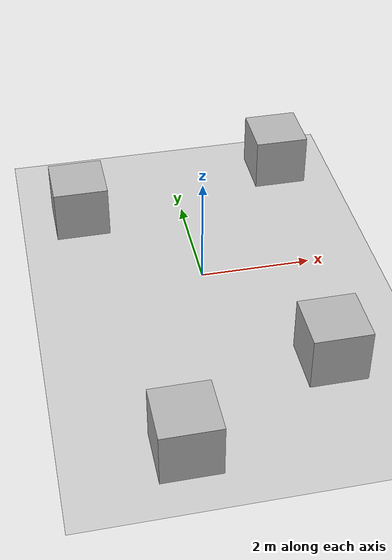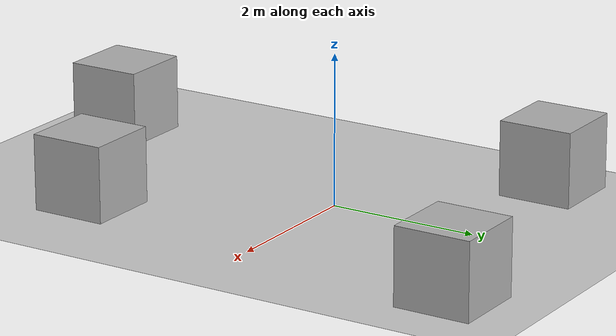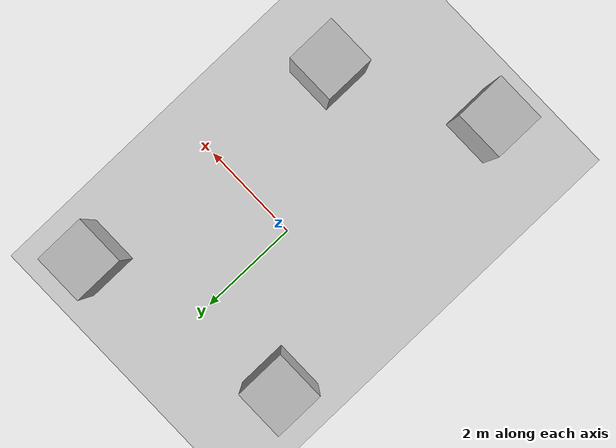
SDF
<?xml version="1.0"?>
<sdf version='1.10'>
  <world name='sirius_world'>
    <physics name='1ms' type='ignored'>
      <max_step_size>0.001</max_step_size>
      <real_time_factor>1</real_time_factor>
      <real_time_update_rate>1000</real_time_update_rate>
    </physics>
    <plugin name='gz::sim::systems::Physics' filename='gz-sim-physics-system'/>
    <plugin name='gz::sim::systems::SceneBroadcaster' filename='gz-sim-scene-broadcaster-system'/>
    <plugin name='gz::sim::systems::UserCommands' filename='gz-sim-user-commands-system'/>
    <plugin name='gz::sim::systems::Sensors' filename='gz-sim-sensors-system'/>
    <gravity>0 0 -9.8000000000000007</gravity>
    <magnetic_field>5.5644999999999998e-06 2.2875799999999999e-05 -4.2388400000000002e-05</magnetic_field>
    <atmosphere type='adiabatic'/>
    <scene>
      <ambient>0.400000006 0.400000006 0.400000006 1</ambient>
      <background>0.699999988 0.699999988 0.699999988 1</background>
      <shadows>true</shadows>
    </scene>
    <model name='ground_plane'>
      <static>true</static>
      <link name='link'>
        <collision name='collision'>
          <geometry>
            <plane>
              <normal>0 0 1</normal>
              <size>1 1</size>
            </plane>
          </geometry>
          <surface>
            <friction>
              <ode/>
            </friction>
            <bounce/>
            <contact/>
          </surface>
        </collision>
        <visual name='visual'>
          <geometry>
            <plane>
              <normal>0 0 1</normal>
              <size>100 100</size>
            </plane>
          </geometry>
          <material>
            <ambient>0.800000012 0.800000012 0.800000012 1</ambient>
            <diffuse>0.800000012 0.800000012 0.800000012 1</diffuse>
            <specular>0.800000012 0.800000012 0.800000012 1</specular>
          </material>
        </visual>
        <pose>0 0 0 0 0 0</pose>
        <inertial>
          <pose>0 0 0 0 0 0</pose>
          <mass>1</mass>
          <inertia>
            <ixx>1</ixx>
            <ixy>0</ixy>
            <ixz>0</ixz>
            <iyy>1</iyy>
            <iyz>0</iyz>
            <izz>1</izz>
          </inertia>
        </inertial>
        <enable_wind>false</enable_wind>
      </link>
      <pose>0 0 0 0 0 0</pose>
      <self_collide>false</self_collide>
    </model>
    <model name='box'>
      <pose>2.1175691581763463 2.9456627128421178 0.49999999990199806 6.2287739151293738e-22 9.3279666454713669e-22 -3.6315533669320137e-22</pose>
      <link name='box_link'>
        <inertial>
          <inertia>
            <ixx>0.16666</ixx>
            <ixy>0</ixy>
            <ixz>0</ixz>
            <iyy>0.16666</iyy>
            <iyz>0</iyz>
            <izz>0.16666</izz>
          </inertia>
          <mass>1</mass>
          <pose>0 0 0 0 0 0</pose>
        </inertial>
        <collision name='box_collision'>
          <geometry>
            <box>
              <size>1 1 1</size>
            </box>
          </geometry>
          <surface>
            <friction>
              <ode/>
            </friction>
            <bounce/>
            <contact/>
          </surface>
        </collision>
        <visual name='box_visual'>
          <geometry>
            <box>
              <size>1 1 1</size>
            </box>
          </geometry>
          <material>
            <ambient>0.300000012 0.300000012 0.300000012 1</ambient>
            <diffuse>0.699999988 0.699999988 0.699999988 1</diffuse>
            <specular>1 1 1 1</specular>
          </material>
        </visual>
        <pose>0 0 0 0 0 0</pose>
        <enable_wind>false</enable_wind>
      </link>
      <static>false</static>
      <self_collide>false</self_collide>
    </model>
    <model name='box_0'>
      <pose>-1.9652978490008861 2.0535759709753885 0.49999999990199806 6.2287739151293738e-22 9.3279666454713669e-22 -3.6315533669320137e-22</pose>
      <link name='box_link'>
        <inertial>
          <inertia>
            <ixx>0.16666</ixx>
            <ixy>0</ixy>
            <ixz>0</ixz>
            <iyy>0.16666</iyy>
            <iyz>0</iyz>
            <izz>0.16666</izz>
          </inertia>
          <mass>1</mass>
          <pose>0 0 0 0 0 0</pose>
        </inertial>
        <collision name='box_collision'>
          <geometry>
            <box>
              <size>1 1 1</size>
            </box>
          </geometry>
          <surface>
            <friction>
              <ode/>
            </friction>
            <bounce/>
            <contact/>
          </surface>
        </collision>
        <visual name='box_visual'>
          <geometry>
            <box>
              <size>1 1 1</size>
            </box>
          </geometry>
          <material>
            <ambient>0.300000012 0.300000012 0.300000012 1</ambient>
            <diffuse>0.699999988 0.699999988 0.699999988 1</diffuse>
            <specular>1 1 1 1</specular>
          </material>
        </visual>
        <pose>0 0 0 0 0 0</pose>
        <enable_wind>false</enable_wind>
      </link>
      <static>false</static>
      <self_collide>false</self_collide>
    </model>
    <model name='box_1'>
      <pose>1.6305791834191492 -2.5937131999213343 0.49999999990199806 6.2287739151293738e-22 9.3279666454713669e-22 -3.6315533669320137e-22</pose>
      <link name='box_link'>
        <inertial>
          <inertia>
            <ixx>0.16666</ixx>
            <ixy>0</ixy>
            <ixz>0</ixz>
            <iyy>0.16666</iyy>
            <iyz>0</iyz>
            <izz>0.16666</izz>
          </inertia>
          <mass>1</mass>
          <pose>0 0 0 0 0 0</pose>
        </inertial>
        <collision name='box_collision'>
          <geometry>
            <box>
              <size>1 1 1</size>
            </box>
          </geometry>
          <surface>
            <friction>
              <ode/>
            </friction>
            <bounce/>
            <contact/>
          </surface>
        </collision>
        <visual name='box_visual'>
          <geometry>
            <box>
              <size>1 1 1</size>
            </box>
          </geometry>
          <material>
            <ambient>0.300000012 0.300000012 0.300000012 1</ambient>
            <diffuse>0.699999988 0.699999988 0.699999988 1</diffuse>
            <specular>1 1 1 1</specular>
          </material>
        </visual>
        <pose>0 0 0 0 0 0</pose>
        <enable_wind>false</enable_wind>
      </link>
      <static>false</static>
      <self_collide>false</self_collide>
    </model>
    <model name='box_2'>
      <pose>-1.1146002625190938 -4.0271533285219432 0.49999999990199806 6.2287739151293738e-22 9.3279666454713669e-22 -3.6315533669320137e-22</pose>
      <link name='box_link'>
        <inertial>
          <inertia>
            <ixx>0.16666</ixx>
            <ixy>0</ixy>
            <ixz>0</ixz>
            <iyy>0.16666</iyy>
            <iyz>0</iyz>
            <izz>0.16666</izz>
          </inertia>
          <mass>1</mass>
          <pose>0 0 0 0 0 0</pose>
        </inertial>
        <collision name='box_collision'>
          <geometry>
            <box>
              <size>1 1 1</size>
            </box>
          </geometry>
          <surface>
            <friction>
              <ode/>
            </friction>
            <bounce/>
            <contact/>
          </surface>
        </collision>
        <visual name='box_visual'>
          <geometry>
            <box>
              <size>1 1 1</size>
            </box>
          </geometry>
          <material>
            <ambient>0.300000012 0.300000012 0.300000012 1</ambient>
            <diffuse>0.699999988 0.699999988 0.699999988 1</diffuse>
            <specular>1 1 1 1</specular>
          </material>
        </visual>
        <pose>0 0 0 0 0 0</pose>
        <enable_wind>false</enable_wind>
      </link>
      <static>false</static>
      <self_collide>false</self_collide>
    </model>
    <light name='sun' type='directional'>
      <pose>0 0 10 0 0 0</pose>
      <cast_shadows>true</cast_shadows>
      <intensity>1</intensity>
      <direction>-0.5 0.10000000000000001 -0.90000000000000002</direction>
      <diffuse>0.800000012 0.800000012 0.800000012 1</diffuse>
      <specular>0.200000003 0.200000003 0.200000003 1</specular>
      <attenuation>
        <range>1000</range>
        <linear>0.0099999997764825821</linear>
        <constant>0.89999997615814209</constant>
        <quadratic>0.0010000000474974513</quadratic>
      </attenuation>
      <spot>
        <inner_angle>0</inner_angle>
        <outer_angle>0</outer_angle>
        <falloff>0</falloff>
      </spot>
    </light>
  </world>
</sdf>
